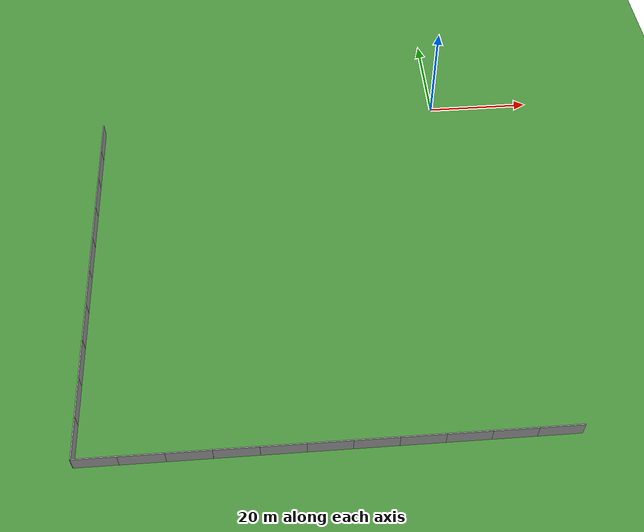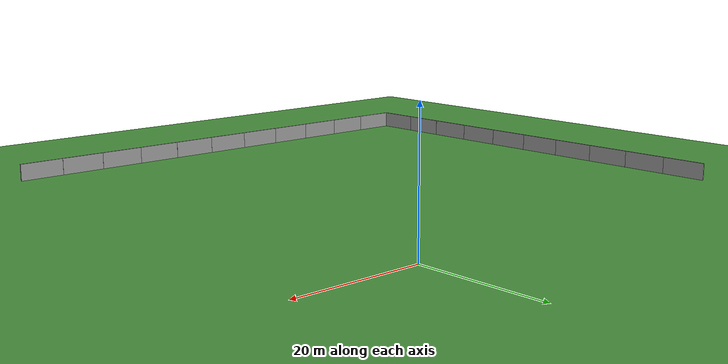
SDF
<sdf version="1.6">
 <world name="default">
  <model name="vrc_driving_terrain">
   <static>1</static>
   <link name="grass_plane">
    <collision name="collision">
     <geometry><plane><normal>0 0 1</normal><size>150 150</size></plane></geometry>
     <surface><friction><ode><mu>0.5</mu><mu2>0.5</mu2></ode></friction></surface>
    </collision>
    <visual name="visual_0">
     <cast_shadows>0</cast_shadows>
     <geometry><plane><normal>0 0 1</normal><size>150 150</size></plane></geometry>
     <material>
      <script>
       <uri>model://forest/vrc_driving_terrain/materials/scripts</uri>
       <uri>model://forest/vrc_driving_terrain/materials/textures</uri>
       <name>vrc/grass</name>
      </script>
     </material>
    </visual>
   </link>
   <pose>6.27224 -2.36963 0 0 -0 0</pose>
  </model>
  <model name="grey_wall_clone_10_clone_clone_clone_11_clone">
   <static>1</static>
   <link name="link">
    <pose>0 0 1.4 0 -0 0</pose>
    <collision name="collision"><geometry><box><size>7.5 0.2 2.8</size></box></geometry></collision>
    <visual name="visual">
     <cast_shadows>0</cast_shadows>
     <geometry><box><size>7.5 0.2 2.8</size></box></geometry>
     <material>
      <script>
       <uri>model://forest/grey_wall/materials/scripts</uri>
       <uri>model://forest/grey_wall/materials/textures</uri>
       <name>vrc/grey_wall</name>
      </script>
     </material>
    </visual>
   </link>
   <pose>-64.823 -77.1867 0 0 -0 0</pose>
  </model>
  <model name="grey_wall_clone_10_clone_clone_clone_11_clone_clone">
   <static>1</static>
   <link name="link">
    <pose>0 0 1.4 0 -0 0</pose>
    <collision name="collision"><geometry><box><size>7.5 0.2 2.8</size></box></geometry></collision>
    <visual name="visual">
     <cast_shadows>0</cast_shadows>
     <geometry><box><size>7.5 0.2 2.8</size></box></geometry>
     <material>
      <script>
       <uri>model://forest/grey_wall/materials/scripts</uri>
       <uri>model://forest/grey_wall/materials/textures</uri>
       <name>vrc/grey_wall</name>
      </script>
     </material>
    </visual>
   </link>
   <pose>-57.5346 -77.2024 0 0 -0 0</pose>
  </model>
  <model name="grey_wall_clone_10_clone_clone_clone_11_clone_clone_0">
   <static>1</static>
   <link name="link">
    <pose>0 0 1.4 0 -0 0</pose>
    <collision name="collision"><geometry><box><size>7.5 0.2 2.8</size></box></geometry></collision>
    <visual name="visual">
     <cast_shadows>0</cast_shadows>
     <geometry><box><size>7.5 0.2 2.8</size></box></geometry>
     <material>
      <script>
       <uri>model://forest/grey_wall/materials/scripts</uri>
       <uri>model://forest/grey_wall/materials/textures</uri>
       <name>vrc/grey_wall</name>
      </script>
     </material>
    </visual>
   </link>
   <pose>-50.026 -77.2083 0 0 -0 0</pose>
  </model>
  <model name="grey_wall_clone_10_clone_clone_clone_11_clone_clone_1">
   <static>1</static>
   <link name="link">
    <pose>0 0 1.4 0 -0 0</pose>
    <collision name="collision"><geometry><box><size>7.5 0.2 2.8</size></box></geometry></collision>
    <visual name="visual">
     <cast_shadows>0</cast_shadows>
     <geometry><box><size>7.5 0.2 2.8</size></box></geometry>
     <material>
      <script>
       <uri>model://forest/grey_wall/materials/scripts</uri>
       <uri>model://forest/grey_wall/materials/textures</uri>
       <name>vrc/grey_wall</name>
      </script>
     </material>
    </visual>
   </link>
   <pose>-42.5276 -77.1982 0 0 -0 0</pose>
  </model>
  <model name="grey_wall_clone_10_clone_clone_clone_11_clone_clone_2">
   <static>1</static>
   <link name="link">
    <pose>0 0 1.4 0 -0 0</pose>
    <collision name="collision"><geometry><box><size>7.5 0.2 2.8</size></box></geometry></collision>
    <visual name="visual">
     <cast_shadows>0</cast_shadows>
     <geometry><box><size>7.5 0.2 2.8</size></box></geometry>
     <material>
      <script>
       <uri>model://forest/grey_wall/materials/scripts</uri>
       <uri>model://forest/grey_wall/materials/textures</uri>
       <name>vrc/grey_wall</name>
      </script>
     </material>
    </visual>
   </link>
   <pose>-35.0175 -77.2078 0 0 -0 0</pose>
  </model>
  <model name="grey_wall_clone_10_clone_clone_clone_11_clone_clone_3">
   <static>1</static>
   <link name="link">
    <pose>0 0 1.4 0 -0 0</pose>
    <collision name="collision"><geometry><box><size>7.5 0.2 2.8</size></box></geometry></collision>
    <visual name="visual">
     <cast_shadows>0</cast_shadows>
     <geometry><box><size>7.5 0.2 2.8</size></box></geometry>
     <material>
      <script>
       <uri>model://forest/grey_wall/materials/scripts</uri>
       <uri>model://forest/grey_wall/materials/textures</uri>
       <name>vrc/grey_wall</name>
      </script>
     </material>
    </visual>
   </link>
   <pose>-27.5544 -77.2087 0 0 -0 0</pose>
  </model>
  <model name="grey_wall_clone_10_clone_clone_clone_11_clone_clone_4">
   <static>1</static>
   <link name="link">
    <pose>0 0 1.4 0 -0 0</pose>
    <collision name="collision"><geometry><box><size>7.5 0.2 2.8</size></box></geometry></collision>
    <visual name="visual">
     <cast_shadows>0</cast_shadows>
     <geometry><box><size>7.5 0.2 2.8</size></box></geometry>
     <material>
      <script>
       <uri>model://forest/grey_wall/materials/scripts</uri>
       <uri>model://forest/grey_wall/materials/textures</uri>
       <name>vrc/grey_wall</name>
      </script>
     </material>
    </visual>
   </link>
   <pose>-20.0557 -77.2142 0 0 -0 0</pose>
  </model>
  <model name="grey_wall_clone_10_clone_clone_clone_11_clone_clone_5">
   <static>1</static>
   <link name="link">
    <pose>0 0 1.4 0 -0 0</pose>
    <collision name="collision"><geometry><box><size>7.5 0.2 2.8</size></box></geometry></collision>
    <visual name="visual">
     <cast_shadows>0</cast_shadows>
     <geometry><box><size>7.5 0.2 2.8</size></box></geometry>
     <material>
      <script>
       <uri>model://forest/grey_wall/materials/scripts</uri>
       <uri>model://forest/grey_wall/materials/textures</uri>
       <name>vrc/grey_wall</name>
      </script>
     </material>
    </visual>
   </link>
   <pose>-12.5467 -77.224 0 0 -0 0</pose>
  </model>
  <model name="grey_wall_clone_10_clone_clone_clone_11_clone_clone_6">
   <static>1</static>
   <link name="link">
    <pose>0 0 1.4 0 -0 0</pose>
    <collision name="collision"><geometry><box><size>7.5 0.2 2.8</size></box></geometry></collision>
    <visual name="visual">
     <cast_shadows>0</cast_shadows>
     <geometry><box><size>7.5 0.2 2.8</size></box></geometry>
     <material>
      <script>
       <uri>model://forest/grey_wall/materials/scripts</uri>
       <uri>model://forest/grey_wall/materials/textures</uri>
       <name>vrc/grey_wall</name>
      </script>
     </material>
    </visual>
   </link>
   <pose>-5.04952 -77.2253 0 0 -0 0</pose>
  </model>
  <model name="grey_wall_clone_10_clone_clone_clone_11_clone_clone_7">
   <static>1</static>
   <link name="link">
    <pose>0 0 1.4 0 -0 0</pose>
    <collision name="collision"><geometry><box><size>7.5 0.2 2.8</size></box></geometry></collision>
    <visual name="visual">
     <cast_shadows>0</cast_shadows>
     <geometry><box><size>7.5 0.2 2.8</size></box></geometry>
     <material>
      <script>
       <uri>model://forest/grey_wall/materials/scripts</uri>
       <uri>model://forest/grey_wall/materials/textures</uri>
       <name>vrc/grey_wall</name>
      </script>
     </material>
    </visual>
   </link>
   <pose>2.45064 -77.2385 0 0 -0 0</pose>
  </model>
  <model name="grey_wall_clone_10_clone_clone_clone_11_clone_clone_8">
   <static>1</static>
   <link name="link">
    <pose>0 0 1.4 0 -0 0</pose>
    <collision name="collision"><geometry><box><size>7.5 0.2 2.8</size></box></geometry></collision>
    <visual name="visual">
     <cast_shadows>0</cast_shadows>
     <geometry><box><size>7.5 0.2 2.8</size></box></geometry>
     <material>
      <script>
       <uri>model://forest/grey_wall/materials/scripts</uri>
       <uri>model://forest/grey_wall/materials/textures</uri>
       <name>vrc/grey_wall</name>
      </script>
     </material>
    </visual>
   </link>
   <pose>9.9578 -77.2456 0 0 -0 0</pose>
  </model>
  <model name="grey_wall_clone_10_clone_0_clone_5_clone_12_clone_9">
   <static>1</static>
   <link name="link">
    <pose>0 0 1.4 0 -0 0</pose>
    <collision name="collision"><geometry><box><size>7.5 0.2 2.8</size></box></geometry></collision>
    <visual name="visual">
     <cast_shadows>0</cast_shadows>
     <geometry><box><size>7.5 0.2 2.8</size></box></geometry>
     <material>
      <script>
       <uri>model://forest/grey_wall/materials/scripts</uri>
       <uri>model://forest/grey_wall/materials/textures</uri>
       <name>vrc/grey_wall</name>
      </script>
     </material>
    </visual>
   </link>
   <pose>-68.6605 -6.23997 0 0 0 -1.56932</pose>
  </model>
  <model name="grey_wall_clone_10_clone_0_clone_5_clone_12_clone_10">
   <static>1</static>
   <link name="link">
    <pose>0 0 1.4 0 -0 0</pose>
    <collision name="collision"><geometry><box><size>7.5 0.2 2.8</size></box></geometry></collision>
    <visual name="visual">
     <cast_shadows>0</cast_shadows>
     <geometry><box><size>7.5 0.2 2.8</size></box></geometry>
     <material>
      <script>
       <uri>model://forest/grey_wall/materials/scripts</uri>
       <uri>model://forest/grey_wall/materials/textures</uri>
       <name>vrc/grey_wall</name>
      </script>
     </material>
    </visual>
   </link>
   <pose>-68.6471 -13.729 0 0 0 -1.56932</pose>
  </model>
  <model name="grey_wall_clone_10_clone_0_clone_5_clone_12_clone_11">
   <static>1</static>
   <link name="link">
    <pose>0 0 1.4 0 -0 0</pose>
    <collision name="collision"><geometry><box><size>7.5 0.2 2.8</size></box></geometry></collision>
    <visual name="visual">
     <cast_shadows>0</cast_shadows>
     <geometry><box><size>7.5 0.2 2.8</size></box></geometry>
     <material>
      <script>
       <uri>model://forest/grey_wall/materials/scripts</uri>
       <uri>model://forest/grey_wall/materials/textures</uri>
       <name>vrc/grey_wall</name>
      </script>
     </material>
    </visual>
   </link>
   <pose>-68.6449 -21.2378 0 0 0 -1.56932</pose>
  </model>
  <model name="grey_wall_clone_10_clone_0_clone_5_clone_12_clone_12">
   <static>1</static>
   <link name="link">
    <pose>0 0 1.4 0 -0 0</pose>
    <collision name="collision"><geometry><box><size>7.5 0.2 2.8</size></box></geometry></collision>
    <visual name="visual">
     <cast_shadows>0</cast_shadows>
     <geometry><box><size>7.5 0.2 2.8</size></box></geometry>
     <material>
      <script>
       <uri>model://forest/grey_wall/materials/scripts</uri>
       <uri>model://forest/grey_wall/materials/textures</uri>
       <name>vrc/grey_wall</name>
      </script>
     </material>
    </visual>
   </link>
   <pose>-68.6227 -28.7312 0 0 0 -1.56932</pose>
  </model>
  <model name="grey_wall_clone_10_clone_0_clone_5_clone_12_clone_13">
   <static>1</static>
   <link name="link">
    <pose>0 0 1.4 0 -0 0</pose>
    <collision name="collision"><geometry><box><size>7.5 0.2 2.8</size></box></geometry></collision>
    <visual name="visual">
     <cast_shadows>0</cast_shadows>
     <geometry><box><size>7.5 0.2 2.8</size></box></geometry>
     <material>
      <script>
       <uri>model://forest/grey_wall/materials/scripts</uri>
       <uri>model://forest/grey_wall/materials/textures</uri>
       <name>vrc/grey_wall</name>
      </script>
     </material>
    </visual>
   </link>
   <pose>-68.621 -36.2363 0 0 0 -1.56932</pose>
  </model>
  <model name="grey_wall_clone_10_clone_0_clone_5_clone_12_clone_14">
   <static>1</static>
   <link name="link">
    <pose>0 0 1.4 0 -0 0</pose>
    <collision name="collision"><geometry><box><size>7.5 0.2 2.8</size></box></geometry></collision>
    <visual name="visual">
     <cast_shadows>0</cast_shadows>
     <geometry><box><size>7.5 0.2 2.8</size></box></geometry>
     <material>
      <script>
       <uri>model://forest/grey_wall/materials/scripts</uri>
       <uri>model://forest/grey_wall/materials/textures</uri>
       <name>vrc/grey_wall</name>
      </script>
     </material>
    </visual>
   </link>
   <pose>-68.5988 -43.7335 0 0 0 -1.56932</pose>
  </model>
  <model name="grey_wall_clone_10_clone_0_clone_5_clone_12_clone_15">
   <static>1</static>
   <link name="link">
    <pose>0 0 1.4 0 -0 0</pose>
    <collision name="collision"><geometry><box><size>7.5 0.2 2.8</size></box></geometry></collision>
    <visual name="visual">
     <cast_shadows>0</cast_shadows>
     <geometry><box><size>7.5 0.2 2.8</size></box></geometry>
     <material>
      <script>
       <uri>model://forest/grey_wall/materials/scripts</uri>
       <uri>model://forest/grey_wall/materials/textures</uri>
       <name>vrc/grey_wall</name>
      </script>
     </material>
    </visual>
   </link>
   <pose>-68.5877 -51.2413 0 0 0 -1.56932</pose>
  </model>
  <model name="grey_wall_clone_10_clone_0_clone_5_clone_12_clone_16">
   <static>1</static>
   <link name="link">
    <pose>0 0 1.4 0 -0 0</pose>
    <collision name="collision"><geometry><box><size>7.5 0.2 2.8</size></box></geometry></collision>
    <visual name="visual">
     <cast_shadows>0</cast_shadows>
     <geometry><box><size>7.5 0.2 2.8</size></box></geometry>
     <material>
      <script>
       <uri>model://forest/grey_wall/materials/scripts</uri>
       <uri>model://forest/grey_wall/materials/textures</uri>
       <name>vrc/grey_wall</name>
      </script>
     </material>
    </visual>
   </link>
   <pose>-68.5839 -58.7528 0 0 0 -1.56932</pose>
  </model>
  <model name="grey_wall_clone_10_clone_0_clone_5_clone_12_clone_17">
   <static>1</static>
   <link name="link">
    <pose>0 0 1.4 0 -0 0</pose>
    <collision name="collision"><geometry><box><size>7.5 0.2 2.8</size></box></geometry></collision>
    <visual name="visual">
     <cast_shadows>0</cast_shadows>
     <geometry><box><size>7.5 0.2 2.8</size></box></geometry>
     <material>
      <script>
       <uri>model://forest/grey_wall/materials/scripts</uri>
       <uri>model://forest/grey_wall/materials/textures</uri>
       <name>vrc/grey_wall</name>
      </script>
     </material>
    </visual>
   </link>
   <pose>-68.5608 -66.2516 0 0 0 -1.56932</pose>
  </model>
  <model name="grey_wall_clone_10_clone_0_clone_5_clone_12_clone_18">
   <static>1</static>
   <link name="link">
    <pose>0 0 1.4 0 -0 0</pose>
    <collision name="collision"><geometry><box><size>7.5 0.2 2.8</size></box></geometry></collision>
    <visual name="visual">
     <cast_shadows>0</cast_shadows>
     <geometry><box><size>7.5 0.2 2.8</size></box></geometry>
     <material>
      <script>
       <uri>model://forest/grey_wall/materials/scripts</uri>
       <uri>model://forest/grey_wall/materials/textures</uri>
       <name>vrc/grey_wall</name>
      </script>
     </material>
    </visual>
   </link>
   <pose>-68.5453 -73.5293 0 0 0 -1.56932</pose>
  </model>
 </world>
</sdf>
